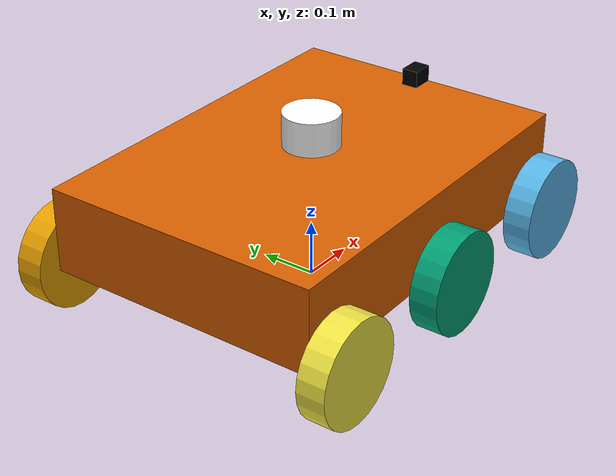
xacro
<?xml version="1.0"?>
<robot xmlns:xacro="http://www.ros.org/wiki/xacro" name="six_wheel_rover">

  <xacro:include filename="lidar.xacro"/>
  <xacro:include filename="inertial_macros.xacro"/>
  <xacro:include filename="depth_camera.xacro"/>

  <!-- PARAMETERS -->
  <xacro:property name="wheel_radius" value="0.09"/>
  <xacro:property name="wheel_width" value="0.05"/>
  <xacro:property name="wheel_x" value="0.30"/>
  <xacro:property name="wheel_y" value="0.28"/>
  <xacro:property name="chassis_height" value="0.15"/>

  <material name="white">
    <color rgba="1 1 1 1"/>
  </material>

  <material name="black">
    <color rgba="0 0 0 1"/>
  </material>

  <!-- BASE LINK -->

  <link name="base_link">

  </link>

  <!-- BASE_FOOTPRINT LINK -->
  <link name="base_footprint">

  </link>

  <joint name="base_footprint_joint" type="fixed">
    <parent link="base_link"/>
    <child link="base_footprint"/>
    <origin xyz="0 0 0" rpy="0 0 0"/>
  </joint>

  <!-- CHASSIS LINK -->
  <link name="chassis">

    <inertial>
      <origin xyz="0 0 0"/>
      <mass value="25"/>
      <inertia ixx="1.2" iyy="1.5" izz="2.0"
               ixy="0" ixz="0" iyz="0"/>
    </inertial>

    <visual>
      <origin xyz="0 0 ${wheel_radius + chassis_height/2}"/>
      <geometry>
        <box size="0.7 0.5 ${chassis_height}"/>
      </geometry>
    </visual>

    <collision>
      <origin xyz="0 0 ${wheel_radius + chassis_height/2}"/>
      <geometry>
        <box size="0.7 0.5 ${chassis_height}"/>
      </geometry>
    </collision>

  </link>

  <joint name="base_to_chassis" type="fixed">
    <parent link="base_link"/>
    <child link="chassis"/>
    <origin xyz="0 0 0" rpy="0 0 0"/>
  </joint>

  <!-- WHEEL MACRO -->
  <xacro:macro name="wheel" params="name x y">

    <link name="${name}">

      <inertial>
        <origin xyz="0 0 0"/>
        <mass value="2"/>
        <inertia ixx="0.02" iyy="0.02" izz="0.02"
                 ixy="0" ixz="0" iyz="0"/>
      </inertial>

      <visual>
        <origin xyz="0 0 0" rpy="1.5708 0 0"/>
        <geometry>
          <cylinder radius="${wheel_radius}" length="${wheel_width}"/>
        </geometry>
      </visual>

      <collision>
        <origin xyz="0 0 0" rpy="1.5708 0 0"/>
        <geometry>
          <cylinder radius="${wheel_radius}" length="${wheel_width}"/>
        </geometry>
      </collision>

    </link>

    <joint name="${name}_joint" type="continuous">

      <parent link="base_link"/>
      <child link="${name}"/>

      <origin xyz="${x} ${y} ${wheel_radius}"/>

      <axis xyz="0 1 0"/>

      <limit effort="50" velocity="20"/>

    </joint>

  </xacro:macro>

  <!-- LEFT SIDE -->
  <xacro:wheel name="left_front_wheel" x="${wheel_x}" y="${wheel_y}"/>
  <xacro:wheel name="left_mid_wheel" x="0" y="${wheel_y}"/>
  <xacro:wheel name="left_rear_wheel" x="-${wheel_x}" y="${wheel_y}"/>

  <!-- RIGHT SIDE -->
  <xacro:wheel name="right_front_wheel" x="${wheel_x}" y="-${wheel_y}"/>
  <xacro:wheel name="right_mid_wheel" x="0" y="-${wheel_y}"/>
  <xacro:wheel name="right_rear_wheel" x="-${wheel_x}" y="-${wheel_y}"/>

  <!-- FRICTION SETTINGS -->

  <!-- FRONT WHEELS SLIDE -->
  <gazebo reference="left_front_wheel">
    <mu1>0.0</mu1>
    <mu2>0.0</mu2>
  </gazebo>

  <gazebo reference="right_front_wheel">
    <mu1>0.0</mu1>
    <mu2>0.0</mu2>
  </gazebo>

  <!-- REAR WHEELS SLIDE -->
  <gazebo reference="left_rear_wheel">
    <mu1>0.0</mu1>
    <mu2>0.0</mu2>
  </gazebo>

  <gazebo reference="right_rear_wheel">
    <mu1>0.0</mu1>
    <mu2>0.0</mu2>
  </gazebo>

  <!-- MIDDLE WHEELS DRIVE -->
  <gazebo reference="left_mid_wheel">
    <mu1>1.5</mu1>
    <mu2>1.5</mu2>
  </gazebo>

  <gazebo reference="right_mid_wheel">
    <mu1>1.5</mu1>
    <mu2>1.5</mu2>
  </gazebo>

  <!-- DIFFERENTIAL DRIVE -->
  <gazebo>
  <plugin name="diff_drive" filename="libgazebo_ros_diff_drive.so">

    <left_joint>left_mid_wheel_joint</left_joint>
    <right_joint>right_mid_wheel_joint</right_joint>

    <wheel_separation>0.56</wheel_separation>
    <wheel_diameter>0.18</wheel_diameter>

    <publish_odom>true</publish_odom>
    <publish_odom_tf>true</publish_odom_tf>

    <odometry_frame>odom</odometry_frame>
    <robot_base_frame>base_link</robot_base_frame>

  </plugin>
</gazebo>

</robot>

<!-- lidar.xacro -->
<robot xmlns:xacro="http://www.ros.org/wiki/xacro" name="robot">
      <xacro:include filename="inertial_macros.xacro"/>

    <!-- LIDAR MOUNT -->
    <joint name="laser_joint" type="fixed">
        <parent link="base_link"/>
        <child link="laser_frame"/>
        <origin xyz="0 0 0.28" rpy="0 0 0"/>
    </joint>

    <!-- LIDAR LINK -->
    <link name="laser_frame">

        <visual>
            <origin xyz="0 0 0"/>
            <geometry>
                <cylinder radius="0.05" length="0.06"/>
            </geometry>
            <material name="white"/>
        </visual>

        <collision>
            <origin xyz="0 0 0"/>
            <geometry>
                <cylinder radius="0.05" length="0.06"/>
            </geometry>
        </collision>

        <xacro:inertial_cylinder mass="0.5" length="0.06" radius="0.05">
            <origin xyz="0 0 0"/>
        </xacro:inertial_cylinder>

    </link>

    <!-- GAZEBO LIDAR SENSOR -->
    <gazebo reference="laser_frame">

        <material>Gazebo/Black</material>

        <sensor type="ray" name="laser">

            <pose>0 0 0 0 0 0</pose>
            <visualize>true</visualize>
            <update_rate>5</update_rate>

            <ray>

                <scan>
                    <horizontal>
                        <samples>360</samples>
                        <min_angle>-3.1416</min_angle>
                        <max_angle>3.1416</max_angle>
                    </horizontal>
                </scan>

                <range>
                    <min>0.1</min>
                    <max>12.0</max>
                </range>

            </ray>

            <plugin name="laser_controller" filename="libgazebo_ros_ray_sensor.so">

                <ros>
                    <argument>~/out:=scan</argument>
                </ros>

                <output_type>sensor_msgs/LaserScan</output_type>
                <frame_name>laser_frame</frame_name>

            </plugin>

        </sensor>

    </gazebo>

</robot>

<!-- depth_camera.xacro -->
<robot xmlns:xacro="http://www.ros.org/wiki/xacro">

  <!-- CAMERA JOINT -->
  <joint name="camera_joint" type="fixed">
    <parent link="base_link"/>
    <child link="camera_frame"/>
    <!-- Position adjusted for your rover dimensions -->
    <origin xyz="0.32 0 0.26" rpy="0 0 0"/>
  </joint>

  <!-- CAMERA BODY -->
  <link name="camera_frame">

    <visual>
      <origin xyz="0 0 0" rpy="0 0 0"/>
      <geometry>
        <box size="0.04 0.03 0.03"/>
      </geometry>
      <material name="black"/>
    </visual>

    <collision>
      <origin xyz="0 0 0"/>
      <geometry>
        <box size="0.04 0.03 0.03"/>
      </geometry>
    </collision>

  </link>

  <!-- OPTICAL FRAME (ROS STANDARD CAMERA FRAME) -->
  <joint name="camera_optical_joint" type="fixed">
    <parent link="camera_frame"/>
    <child link="camera_optical_frame"/>
    <origin xyz="0 0 0" rpy="${-pi/2} 0 ${-pi/2}"/>
  </joint>

  <link name="camera_optical_frame"/>

  <!-- GAZEBO CAMERA SENSOR -->
  <gazebo reference="camera_frame">

    <material>Gazebo/Black</material>

    <sensor type="camera" name="depth_camera">

      <pose>0 0 0 0 0 0</pose>

      <visualize>true</visualize>
      <update_rate>30</update_rate>

      <camera>

        <horizontal_fov>1.089</horizontal_fov>

        <image>
          <width>640</width>
          <height>480</height>
          <format>R8G8B8</format>
        </image>

        <clip>
          <near>0.1</near>
          <far>100</far>
        </clip>

      </camera>

      <plugin name="camera_controller" filename="libgazebo_ros_camera.so">

        <frame_name>camera_optical_frame</frame_name>

        <ros>
          <namespace>/camera</namespace>
        </ros>

      </plugin>

    </sensor>

  </gazebo>

</robot>
